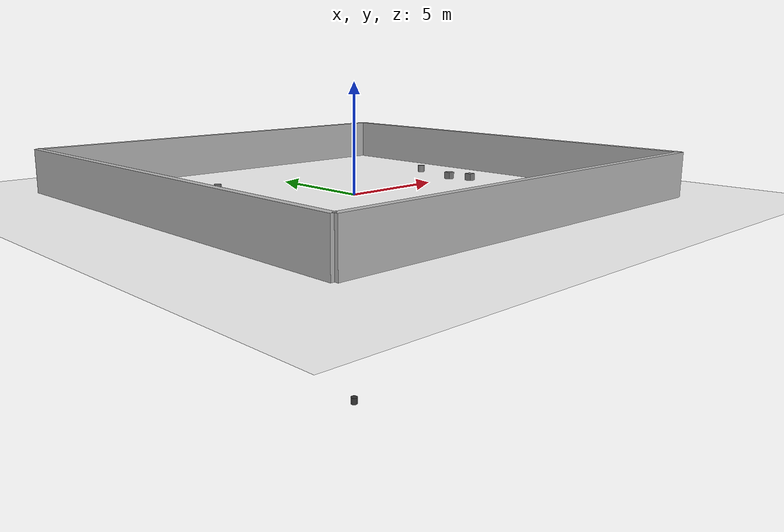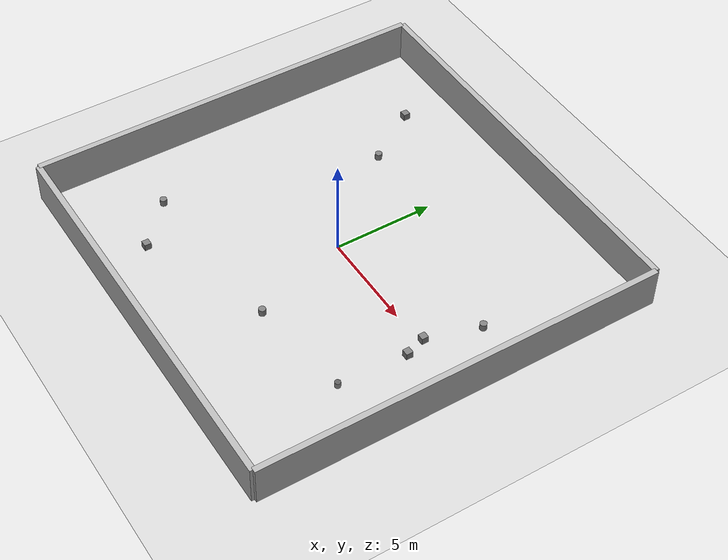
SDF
<sdf version="1.9">
 <world name="big_dynamic">
  <physics name="1ms" type="ignored">
   <max_step_size>0.001</max_step_size>
   <real_time_factor>1</real_time_factor>
   <real_time_update_rate>1000</real_time_update_rate>
  </physics>
  <plugin name="ignition::gazebo::systems::Physics" filename="ignition-gazebo-physics-system"/>
  <plugin name="ignition::gazebo::systems::UserCommands" filename="ignition-gazebo-user-commands-system"/>
  <plugin name="ignition::gazebo::systems::SceneBroadcaster" filename="ignition-gazebo-scene-broadcaster-system"/>
  <plugin name="ignition::gazebo::systems::Contact" filename="ignition-gazebo-contact-system"/>
  <gravity>0 0 -9.8</gravity>
  <scene>
   <ambient>0.45 0.45 0.45 1</ambient>
   <background>0.75 0.75 0.75 1</background>
   <shadows>true</shadows>
  </scene>
  <light name="sun" type="directional">
   <pose>0 0 10 0 0 0</pose>
   <intensity>1.1</intensity>
   <direction>-0.5 0.1 -0.9</direction>
   <diffuse>0.9 0.9 0.9 1</diffuse>
   <specular>0.2 0.2 0.2 1</specular>
  </light>
  <model name="ground_plane">
   <static>true</static>
   <link name="link">
    <collision name="collision">
     <geometry><plane><normal>0 0 1</normal><size>100.0 100.0</size></plane></geometry>
    </collision>
    <visual name="visual">
     <geometry><plane><normal>0 0 1</normal><size>100.0 100.0</size></plane></geometry>
     <material><ambient>0.80 0.80 0.80 1</ambient><diffuse>0.80 0.80 0.80 1</diffuse></material>
    </visual>
   </link>
  </model>
  <model name="border">
   <pose>0 0 1 0 0 0</pose>
   <static>true</static>
   <link name="wall_west">
    <pose>-10.15 0 0 0 0 0</pose>
    <collision name="col"><geometry><box><size>0.3 20.3 2</size></box></geometry></collision>
    <visual name="vis"><geometry><box><size>0.3 20.3 2</size></box></geometry></visual>
   </link>
   <link name="wall_east">
    <pose>10.15 0 0 0 0 0</pose>
    <collision name="col"><geometry><box><size>0.3 20.3 2</size></box></geometry></collision>
    <visual name="vis"><geometry><box><size>0.3 20.3 2</size></box></geometry></visual>
   </link>
   <link name="wall_north">
    <pose>0 10.15 0 0 0 0</pose>
    <collision name="col"><geometry><box><size>20.3 0.3 2</size></box></geometry></collision>
    <visual name="vis"><geometry><box><size>20.3 0.3 2</size></box></geometry></visual>
   </link>
   <link name="wall_south">
    <pose>0 -10.15 0 0 0 0</pose>
    <collision name="col"><geometry><box><size>20.3 0.3 2</size></box></geometry></collision>
    <visual name="vis"><geometry><box><size>20.3 0.3 2</size></box></geometry></visual>
   </link>
  </model>
  <model name="static_box_0">
   <pose>7.13 -0.84 0.17 0 0 0</pose>
   <static>true</static>
   <link name="link">
    <visual name="vis">
     <geometry><box><size>0.34 0.34 0.34</size></box></geometry>
     <material><ambient>0.5 0.5 0.5 1</ambient><diffuse>0.5 0.5 0.5 1</diffuse></material>
    </visual>
    <collision name="col">
     <geometry><box><size>0.34 0.34 0.34</size></box></geometry>
     <surface><contact><collide_bitmask>0x01</collide_bitmask></contact></surface>
    </collision>
   </link>
  </model>
  <model name="static_box_1">
   <pose>-5.88 7.59 0.17 0 0 0</pose>
   <static>true</static>
   <link name="link">
    <visual name="vis">
     <geometry><box><size>0.34 0.34 0.34</size></box></geometry>
     <material><ambient>0.5 0.5 0.5 1</ambient><diffuse>0.5 0.5 0.5 1</diffuse></material>
    </visual>
    <collision name="col">
     <geometry><box><size>0.34 0.34 0.34</size></box></geometry>
     <surface><contact><collide_bitmask>0x01</collide_bitmask></contact></surface>
    </collision>
   </link>
  </model>
  <model name="static_box_2">
   <pose>6.76 0.21 0.17 0 0 0</pose>
   <static>true</static>
   <link name="link">
    <visual name="vis">
     <geometry><box><size>0.34 0.34 0.34</size></box></geometry>
     <material><ambient>0.5 0.5 0.5 1</ambient><diffuse>0.5 0.5 0.5 1</diffuse></material>
    </visual>
    <collision name="col">
     <geometry><box><size>0.34 0.34 0.34</size></box></geometry>
     <surface><contact><collide_bitmask>0x01</collide_bitmask></contact></surface>
    </collision>
   </link>
  </model>
  <model name="static_box_3">
   <pose>-4.61 -7.49 0.17 0 0 0</pose>
   <static>true</static>
   <link name="link">
    <visual name="vis">
     <geometry><box><size>0.34 0.34 0.34</size></box></geometry>
     <material><ambient>0.5 0.5 0.5 1</ambient><diffuse>0.5 0.5 0.5 1</diffuse></material>
    </visual>
    <collision name="col">
     <geometry><box><size>0.34 0.34 0.34</size></box></geometry>
     <surface><contact><collide_bitmask>0x01</collide_bitmask></contact></surface>
    </collision>
   </link>
  </model>
  <model name="static_cyl_0">
   <pose>1.72 -4.98 0.17 0 0 0</pose>
   <static>true</static>
   <link name="link">
    <visual name="vis">
     <geometry><cylinder><radius>0.17</radius><length>0.34</length></cylinder></geometry>
     <material><ambient>0.5 0.5 0.5 1</ambient><diffuse>0.5 0.5 0.5 1</diffuse></material>
    </visual>
    <collision name="col">
     <geometry><cylinder><radius>0.17</radius><length>0.34</length></cylinder></geometry>
     <surface><contact><collide_bitmask>0x01</collide_bitmask></contact></surface>
    </collision>
   </link>
  </model>
  <model name="static_cyl_1">
   <pose>7.55 2.85 0.17 0 0 0</pose>
   <static>true</static>
   <link name="link">
    <visual name="vis">
     <geometry><cylinder><radius>0.17</radius><length>0.34</length></cylinder></geometry>
     <material><ambient>0.5 0.5 0.5 1</ambient><diffuse>0.5 0.5 0.5 1</diffuse></material>
    </visual>
    <collision name="col">
     <geometry><cylinder><radius>0.17</radius><length>0.34</length></cylinder></geometry>
     <surface><contact><collide_bitmask>0x01</collide_bitmask></contact></surface>
    </collision>
   </link>
  </model>
  <model name="static_cyl_2">
   <pose>-4.08 4.85 0.17 0 0 0</pose>
   <static>true</static>
   <link name="link">
    <visual name="vis">
     <geometry><cylinder><radius>0.17</radius><length>0.34</length></cylinder></geometry>
     <material><ambient>0.5 0.5 0.5 1</ambient><diffuse>0.5 0.5 0.5 1</diffuse></material>
    </visual>
    <collision name="col">
     <geometry><cylinder><radius>0.17</radius><length>0.34</length></cylinder></geometry>
     <surface><contact><collide_bitmask>0x01</collide_bitmask></contact></surface>
    </collision>
   </link>
  </model>
  <model name="static_cyl_3">
   <pose>-6.74 -5.52 0.17 0 0 0</pose>
   <static>true</static>
   <link name="link">
    <visual name="vis">
     <geometry><cylinder><radius>0.17</radius><length>0.34</length></cylinder></geometry>
     <material><ambient>0.5 0.5 0.5 1</ambient><diffuse>0.5 0.5 0.5 1</diffuse></material>
    </visual>
    <collision name="col">
     <geometry><cylinder><radius>0.17</radius><length>0.34</length></cylinder></geometry>
     <surface><contact><collide_bitmask>0x01</collide_bitmask></contact></surface>
    </collision>
   </link>
  </model>
  <model name="teaching_blocker_0">
   <pose>0 0 -10 0 0 0</pose>
   <static>true</static>
   <link name="link">
    <visual name="vis">
     <geometry><cylinder><radius>0.17</radius><length>0.34</length></cylinder></geometry>
     <material><ambient>0.2 0.2 0.2 1</ambient><diffuse>0.2 0.2 0.2 1</diffuse></material>
    </visual>
    <collision name="col">
     <geometry><cylinder><radius>0.17</radius><length>0.34</length></cylinder></geometry>
     <surface><contact><collide_bitmask>0x01</collide_bitmask></contact></surface>
    </collision>
   </link>
  </model>
  <model name="teaching_blocker_1">
   <pose>0 0 -10 0 0 0</pose>
   <static>true</static>
   <link name="link">
    <visual name="vis">
     <geometry><cylinder><radius>0.17</radius><length>0.34</length></cylinder></geometry>
     <material><ambient>0.2 0.2 0.2 1</ambient><diffuse>0.2 0.2 0.2 1</diffuse></material>
    </visual>
    <collision name="col">
     <geometry><cylinder><radius>0.17</radius><length>0.34</length></cylinder></geometry>
     <surface><contact><collide_bitmask>0x01</collide_bitmask></contact></surface>
    </collision>
   </link>
  </model>
  <model name="teacher_patrol">
   <pose>0 0 -10 0 0 0</pose>
   <plugin filename="ignition-gazebo-velocity-control-system" name="ignition::gazebo::systems::VelocityControl">
    <link_name>link</link_name>
    <topic>/teacher_patrol/cmd_vel</topic>
   </plugin>
   <link name="link">
    <inertial>
     <pose>0 0 -0.34 0 0 0</pose>
     <mass>200.0</mass>
     <inertia><ixx>10.0</ixx><iyy>10.0</iyy><izz>10.0</izz></inertia>
    </inertial>
    <visual name="vis">
     <geometry><cylinder><radius>0.17</radius><length>0.34</length></cylinder></geometry>
     <material><ambient>1 0 0 1</ambient><diffuse>1 0 0 1</diffuse></material>
    </visual>
    <collision name="col">
     <geometry><cylinder><radius>0.17</radius><length>0.34</length></cylinder></geometry>
     <surface><contact><collide_bitmask>0x02</collide_bitmask></contact></surface>
    </collision>
   </link>
  </model>
  <model name="teacher_missile">
   <pose>0 0 -10 0 0 0</pose>
   <plugin filename="ignition-gazebo-velocity-control-system" name="ignition::gazebo::systems::VelocityControl">
    <link_name>link</link_name>
    <topic>/teacher_missile/cmd_vel</topic>
   </plugin>
   <link name="link">
    <inertial>
     <pose>0 0 -0.34 0 0 0</pose>
     <mass>200.0</mass>
     <inertia><ixx>10.0</ixx><iyy>10.0</iyy><izz>10.0</izz></inertia>
    </inertial>
    <visual name="vis">
     <geometry><cylinder><radius>0.17</radius><length>0.34</length></cylinder></geometry>
     <material><ambient>1 1 0 1</ambient><diffuse>1 1 0 1</diffuse></material>
    </visual>
    <collision name="col">
     <geometry><cylinder><radius>0.17</radius><length>0.34</length></cylinder></geometry>
     <surface><contact><collide_bitmask>0x02</collide_bitmask></contact></surface>
    </collision>
   </link>
  </model>
 </world>
</sdf>
